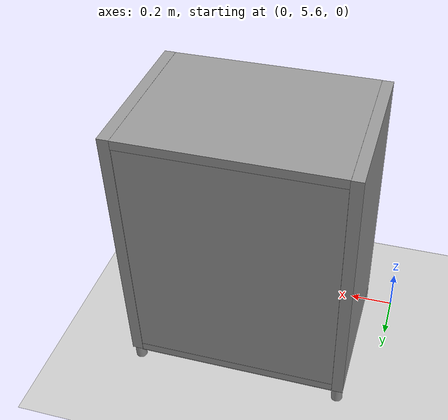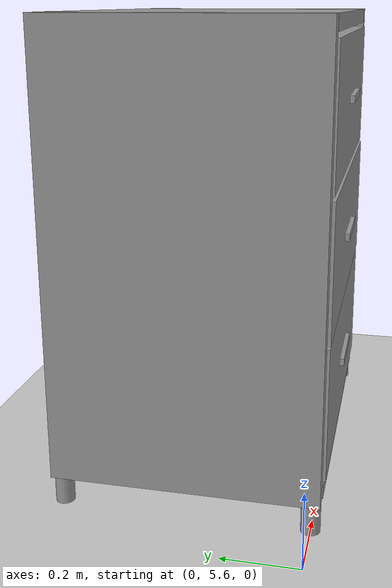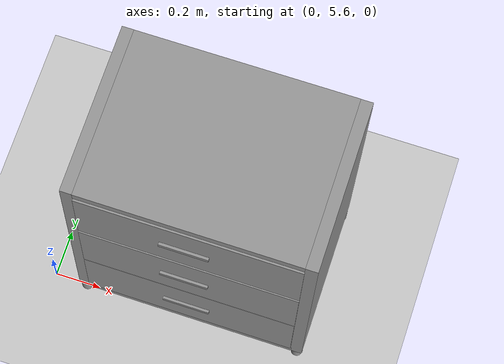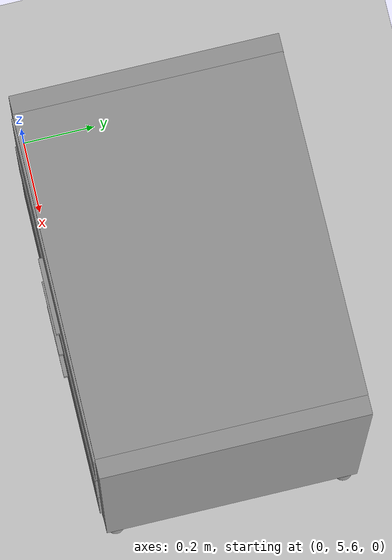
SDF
<sdf version="1.7">
 <world name="default">
  <model name="ground_plane">
   <static>1</static>
   <link name="link">
    <collision name="collision">
     <geometry><plane><normal>0 0 1</normal><size>100 100</size></plane></geometry>
     <surface>
      <contact><collide_bitmask>65535</collide_bitmask></contact>
      <friction><ode><mu>100</mu><mu2>50</mu2></ode></friction>
     </surface>
    </collision>
    <visual name="visual">
     <cast_shadows>0</cast_shadows>
     <geometry><plane><normal>0 0 1</normal><size>100 100</size></plane></geometry>
     <material>
      <script><uri>file://media/materials/scripts/gazebo.material</uri><name>Gazebo/Grey</name></script>
     </material>
    </visual>
   </link>
  </model>
  <model name="my_tall_drawer_0">
   <link name="link">
    <inertial>
     <mass>1</mass>
     <inertia>
      <ixx>0.166667</ixx>
      <ixy>0</ixy>
      <ixz>0</ixz>
      <iyy>0.166667</iyy>
      <iyz>0</iyz>
      <izz>0.166667</izz>
     </inertia>
    </inertial>
    <pose>-0.03613 -0.018536 -0.061909 0 -0 0</pose>
    <visual name="visual">
     <geometry><box><size>0.05 0.9 1.17</size></box></geometry>
     <material>
      <script><name>Gazebo/Grey</name><uri>file://media/materials/scripts/gazebo.material</uri></script>
      <shader type="pixel"><normal_map>__default__</normal_map></shader>
      <ambient>0.9 0.9 0.9 1</ambient>
      <diffuse>0.9 0.9 0.9 1</diffuse>
      <specular>0.01 0.01 0.01 1</specular>
      <emissive>0 0 0 1</emissive>
     </material>
     <pose>0 0 0.725 0 -0 0</pose>
    </visual>
    <collision name="collision">
     <pose>0 0 0.725 0 -0 0</pose>
     <geometry><box><size>0.05 0.9 1.17</size></box></geometry>
     <surface>
      <friction>
       <ode><mu>1</mu><mu2>1</mu2><fdir1>0 0 0</fdir1><slip1>0</slip1><slip2>0</slip2></ode>
       <torsional>
        <coefficient>1</coefficient>
        <patch_radius>0</patch_radius>
        <surface_radius>0</surface_radius>
        <use_patch_radius>1</use_patch_radius>
        <ode><slip>0</slip></ode>
       </torsional>
      </friction>
      <bounce><restitution_coefficient>0</restitution_coefficient><threshold>1e+06</threshold></bounce>
      <contact>
       <collide_without_contact>0</collide_without_contact>
       <collide_without_contact_bitmask>1</collide_without_contact_bitmask>
       <collide_bitmask>1</collide_bitmask>
       <ode>
        <soft_cfm>0</soft_cfm>
        <soft_erp>0.2</soft_erp>
        <kp>1e+13</kp>
        <kd>1</kd>
        <max_vel>0.01</max_vel>
        <min_depth>0</min_depth>
       </ode>
       <bullet>
        <split_impulse>1</split_impulse>
        <split_impulse_penetration_threshold>-0.01</split_impulse_penetration_threshold>
        <soft_cfm>0</soft_cfm>
        <soft_erp>0.2</soft_erp>
        <kp>1e+13</kp>
        <kd>1</kd>
       </bullet>
      </contact>
     </surface>
    </collision>
   </link>
   <link name="link_0">
    <inertial>
     <mass>1</mass>
     <inertia><ixx>0.145833</ixx><ixy>0</ixy><ixz>0</ixz><iyy>0.145833</iyy><iyz>0</iyz><izz>0.125</izz></inertia>
    </inertial>
    <pose>-0.037041 -0.491807 0.517038 0 -0 0</pose>
    <visual name="visual">
     <pose>0 0 -0.47 0 -0 0</pose>
     <geometry><cylinder><radius>0.025</radius><length>0.075</length></cylinder></geometry>
     <material>
      <lighting>1</lighting>
      <script><uri>file://media/materials/scripts/gazebo.material</uri><name>Gazebo/Grey</name></script>
      <shader type="pixel"><normal_map>__default__</normal_map></shader>
      <ambient>0.9 0.9 0.9 0</ambient>
      <diffuse>0.9 0.9 0.9 1</diffuse>
      <specular>0.01 0.01 0.01 1</specular>
      <emissive>0 0 0 1</emissive>
     </material>
    </visual>
    <collision name="collision">
     <pose>0 0 -0.47 0 -0 0</pose>
     <geometry><cylinder><radius>0.025</radius><length>0.075</length></cylinder></geometry>
     <surface>
      <friction>
       <ode><mu>1</mu><mu2>1</mu2><fdir1>0 0 0</fdir1><slip1>0</slip1><slip2>0</slip2></ode>
       <torsional>
        <coefficient>1</coefficient>
        <patch_radius>0</patch_radius>
        <surface_radius>0</surface_radius>
        <use_patch_radius>1</use_patch_radius>
        <ode><slip>0</slip></ode>
       </torsional>
      </friction>
      <bounce><restitution_coefficient>0</restitution_coefficient><threshold>1e+06</threshold></bounce>
      <contact>
       <collide_without_contact>0</collide_without_contact>
       <collide_without_contact_bitmask>1</collide_without_contact_bitmask>
       <collide_bitmask>1</collide_bitmask>
       <ode>
        <soft_cfm>0</soft_cfm>
        <soft_erp>0.2</soft_erp>
        <kp>1e+13</kp>
        <kd>1</kd>
        <max_vel>0.01</max_vel>
        <min_depth>0</min_depth>
       </ode>
       <bullet>
        <split_impulse>1</split_impulse>
        <split_impulse_penetration_threshold>-0.01</split_impulse_penetration_threshold>
        <soft_cfm>0</soft_cfm>
        <soft_erp>0.2</soft_erp>
        <kp>1e+13</kp>
        <kd>1</kd>
       </bullet>
      </contact>
     </surface>
    </collision>
   </link>
   <link name="link_0_clone">
    <inertial>
     <mass>1</mass>
     <inertia>
      <ixx>0.166667</ixx>
      <ixy>0</ixy>
      <ixz>0</ixz>
      <iyy>0.166667</iyy>
      <iyz>0</iyz>
      <izz>0.166667</izz>
     </inertia>
    </inertial>
    <pose>0.649567 -0.03449 1.03588 0 -0 0</pose>
    <gravity>0</gravity>
    <visual name="visual">
     <geometry><box><size>0.012 0.2 0.02</size></box></geometry>
     <material>
      <lighting>1</lighting>
      <script><uri>file://media/materials/scripts/gazebo.material</uri><name>Gazebo/Grey</name></script>
      <shader type="pixel"><normal_map>__default__</normal_map></shader>
      <ambient>0.2 0.2 0.2 0</ambient>
      <diffuse>0.2 0.2 0.2 1</diffuse>
      <specular>0.01 0.01 0.01 1</specular>
      <emissive>0 0 0 1</emissive>
     </material>
    </visual>
    <collision name="collision">
     <geometry><box><size>0.012 0.2 0.02</size></box></geometry>
     <surface>
      <friction>
       <ode><mu>1</mu><mu2>1</mu2><fdir1>0 0 0</fdir1><slip1>0</slip1><slip2>0</slip2></ode>
       <torsional>
        <coefficient>1</coefficient>
        <patch_radius>0</patch_radius>
        <surface_radius>0</surface_radius>
        <use_patch_radius>1</use_patch_radius>
        <ode><slip>0</slip></ode>
       </torsional>
      </friction>
      <bounce><restitution_coefficient>0</restitution_coefficient><threshold>1e+06</threshold></bounce>
      <contact>
       <collide_without_contact>0</collide_without_contact>
       <collide_without_contact_bitmask>1</collide_without_contact_bitmask>
       <collide_bitmask>1</collide_bitmask>
       <ode>
        <soft_cfm>0</soft_cfm>
        <soft_erp>0.2</soft_erp>
        <kp>1e+13</kp>
        <kd>1</kd>
        <max_vel>0.01</max_vel>
        <min_depth>0</min_depth>
       </ode>
       <bullet>
        <split_impulse>1</split_impulse>
        <split_impulse_penetration_threshold>-0.01</split_impulse_penetration_threshold>
        <soft_cfm>0</soft_cfm>
        <soft_erp>0.2</soft_erp>
        <kp>1e+13</kp>
        <kd>1</kd>
       </bullet>
      </contact>
     </surface>
    </collision>
   </link>
   <link name="link_0_clone_0">
    <inertial>
     <mass>1</mass>
     <inertia><ixx>0.145833</ixx><ixy>0</ixy><ixz>0</ixz><iyy>0.145833</iyy><iyz>0</iyz><izz>0.125</izz></inertia>
    </inertial>
    <pose>0.611334 -0.496528 0.517038 0 -0 0</pose>
    <visual name="visual">
     <pose>0 0 -0.47 0 -0 0</pose>
     <geometry><cylinder><radius>0.025</radius><length>0.075</length></cylinder></geometry>
     <material>
      <lighting>1</lighting>
      <script><uri>file://media/materials/scripts/gazebo.material</uri><name>Gazebo/Grey</name></script>
      <shader type="pixel"><normal_map>__default__</normal_map></shader>
      <ambient>0.9 0.9 0.9 0</ambient>
      <diffuse>0.9 0.9 0.9 1</diffuse>
      <specular>0.01 0.01 0.01 1</specular>
      <emissive>0 0 0 1</emissive>
     </material>
    </visual>
    <collision name="collision">
     <pose>0 0 -0.47 0 -0 0</pose>
     <geometry><cylinder><radius>0.025</radius><length>0.075</length></cylinder></geometry>
     <surface>
      <friction>
       <ode><mu>1</mu><mu2>1</mu2><fdir1>0 0 0</fdir1><slip1>0</slip1><slip2>0</slip2></ode>
       <torsional>
        <coefficient>1</coefficient>
        <patch_radius>0</patch_radius>
        <surface_radius>0</surface_radius>
        <use_patch_radius>1</use_patch_radius>
        <ode><slip>0</slip></ode>
       </torsional>
      </friction>
      <bounce><restitution_coefficient>0</restitution_coefficient><threshold>1e+06</threshold></bounce>
      <contact>
       <collide_without_contact>0</collide_without_contact>
       <collide_without_contact_bitmask>1</collide_without_contact_bitmask>
       <collide_bitmask>1</collide_bitmask>
       <ode>
        <soft_cfm>0</soft_cfm>
        <soft_erp>0.2</soft_erp>
        <kp>1e+13</kp>
        <kd>1</kd>
        <max_vel>0.01</max_vel>
        <min_depth>0</min_depth>
       </ode>
       <bullet>
        <split_impulse>1</split_impulse>
        <split_impulse_penetration_threshold>-0.01</split_impulse_penetration_threshold>
        <soft_cfm>0</soft_cfm>
        <soft_erp>0.2</soft_erp>
        <kp>1e+13</kp>
        <kd>1</kd>
       </bullet>
      </contact>
     </surface>
    </collision>
   </link>
   <link name="link_0_clone_1">
    <inertial>
     <mass>1</mass>
     <inertia><ixx>0.145833</ixx><ixy>0</ixy><ixz>0</ixz><iyy>0.145833</iyy><iyz>0</iyz><izz>0.125</izz></inertia>
    </inertial>
    <pose>-0.03182 0.454415 0.517038 0 -0 0</pose>
    <visual name="visual">
     <pose>0 0 -0.47 0 -0 0</pose>
     <geometry><cylinder><radius>0.025</radius><length>0.075</length></cylinder></geometry>
     <material>
      <lighting>1</lighting>
      <script><uri>file://media/materials/scripts/gazebo.material</uri><name>Gazebo/Grey</name></script>
      <shader type="pixel"><normal_map>__default__</normal_map></shader>
      <ambient>0.9 0.9 0.9 0</ambient>
      <diffuse>0.9 0.9 0.9 1</diffuse>
      <specular>0.01 0.01 0.01 1</specular>
      <emissive>0 0 0 1</emissive>
     </material>
    </visual>
    <collision name="collision">
     <pose>0 0 -0.47 0 -0 0</pose>
     <geometry><cylinder><radius>0.025</radius><length>0.075</length></cylinder></geometry>
     <surface>
      <friction>
       <ode><mu>1</mu><mu2>1</mu2><fdir1>0 0 0</fdir1><slip1>0</slip1><slip2>0</slip2></ode>
       <torsional>
        <coefficient>1</coefficient>
        <patch_radius>0</patch_radius>
        <surface_radius>0</surface_radius>
        <use_patch_radius>1</use_patch_radius>
        <ode><slip>0</slip></ode>
       </torsional>
      </friction>
      <bounce><restitution_coefficient>0</restitution_coefficient><threshold>1e+06</threshold></bounce>
      <contact>
       <collide_without_contact>0</collide_without_contact>
       <collide_without_contact_bitmask>1</collide_without_contact_bitmask>
       <collide_bitmask>1</collide_bitmask>
       <ode>
        <soft_cfm>0</soft_cfm>
        <soft_erp>0.2</soft_erp>
        <kp>1e+13</kp>
        <kd>1</kd>
        <max_vel>0.01</max_vel>
        <min_depth>0</min_depth>
       </ode>
       <bullet>
        <split_impulse>1</split_impulse>
        <split_impulse_penetration_threshold>-0.01</split_impulse_penetration_threshold>
        <soft_cfm>0</soft_cfm>
        <soft_erp>0.2</soft_erp>
        <kp>1e+13</kp>
        <kd>1</kd>
       </bullet>
      </contact>
     </surface>
    </collision>
   </link>
   <link name="link_0_clone_2">
    <inertial>
     <mass>1</mass>
     <inertia><ixx>0.145833</ixx><ixy>0</ixy><ixz>0</ixz><iyy>0.145833</iyy><iyz>0</iyz><izz>0.125</izz></inertia>
    </inertial>
    <pose>0.607914 0.452464 0.517038 0 -0 0</pose>
    <visual name="visual">
     <pose>0 0 -0.47 0 -0 0</pose>
     <geometry><cylinder><radius>0.025</radius><length>0.075</length></cylinder></geometry>
     <material>
      <lighting>1</lighting>
      <script><uri>file://media/materials/scripts/gazebo.material</uri><name>Gazebo/Grey</name></script>
      <shader type="pixel"><normal_map>__default__</normal_map></shader>
      <ambient>0.9 0.9 0.9 0</ambient>
      <diffuse>0.9 0.9 0.9 1</diffuse>
      <specular>0.01 0.01 0.01 1</specular>
      <emissive>0 0 0 1</emissive>
     </material>
    </visual>
    <collision name="collision">
     <pose>0 0 -0.47 0 -0 0</pose>
     <geometry><cylinder><radius>0.025</radius><length>0.075</length></cylinder></geometry>
     <surface>
      <friction>
       <ode><mu>1</mu><mu2>1</mu2><fdir1>0 0 0</fdir1><slip1>0</slip1><slip2>0</slip2></ode>
       <torsional>
        <coefficient>1</coefficient>
        <patch_radius>0</patch_radius>
        <surface_radius>0</surface_radius>
        <use_patch_radius>1</use_patch_radius>
        <ode><slip>0</slip></ode>
       </torsional>
      </friction>
      <bounce><restitution_coefficient>0</restitution_coefficient><threshold>1e+06</threshold></bounce>
      <contact>
       <collide_without_contact>0</collide_without_contact>
       <collide_without_contact_bitmask>1</collide_without_contact_bitmask>
       <collide_bitmask>1</collide_bitmask>
       <ode>
        <soft_cfm>0</soft_cfm>
        <soft_erp>0.2</soft_erp>
        <kp>1e+13</kp>
        <kd>1</kd>
        <max_vel>0.01</max_vel>
        <min_depth>0</min_depth>
       </ode>
       <bullet>
        <split_impulse>1</split_impulse>
        <split_impulse_penetration_threshold>-0.01</split_impulse_penetration_threshold>
        <soft_cfm>0</soft_cfm>
        <soft_erp>0.2</soft_erp>
        <kp>1e+13</kp>
        <kd>1</kd>
       </bullet>
      </contact>
     </surface>
    </collision>
   </link>
   <link name="link_0_clone_clone">
    <inertial>
     <mass>1</mass>
     <inertia>
      <ixx>0.166667</ixx>
      <ixy>0</ixy>
      <ixz>0</ixz>
      <iyy>0.166667</iyy>
      <iyz>0</iyz>
      <izz>0.166667</izz>
     </inertia>
    </inertial>
    <pose>0.648574 -0.032127 0.308738 0 -0 0</pose>
    <gravity>0</gravity>
    <visual name="visual">
     <geometry><box><size>0.012 0.2 0.02</size></box></geometry>
     <material>
      <lighting>1</lighting>
      <script><uri>file://media/materials/scripts/gazebo.material</uri><name>Gazebo/Grey</name></script>
      <shader type="pixel"><normal_map>__default__</normal_map></shader>
      <ambient>0.2 0.2 0.2 0</ambient>
      <diffuse>0.2 0.2 0.2 1</diffuse>
      <specular>0.01 0.01 0.01 1</specular>
      <emissive>0 0 0 1</emissive>
     </material>
    </visual>
    <collision name="collision">
     <geometry><box><size>0.012 0.2 0.02</size></box></geometry>
     <surface>
      <friction>
       <ode><mu>1</mu><mu2>1</mu2><fdir1>0 0 0</fdir1><slip1>0</slip1><slip2>0</slip2></ode>
       <torsional>
        <coefficient>1</coefficient>
        <patch_radius>0</patch_radius>
        <surface_radius>0</surface_radius>
        <use_patch_radius>1</use_patch_radius>
        <ode><slip>0</slip></ode>
       </torsional>
      </friction>
      <bounce><restitution_coefficient>0</restitution_coefficient><threshold>1e+06</threshold></bounce>
      <contact>
       <collide_without_contact>0</collide_without_contact>
       <collide_without_contact_bitmask>1</collide_without_contact_bitmask>
       <collide_bitmask>1</collide_bitmask>
       <ode>
        <soft_cfm>0</soft_cfm>
        <soft_erp>0.2</soft_erp>
        <kp>1e+13</kp>
        <kd>1</kd>
        <max_vel>0.01</max_vel>
        <min_depth>0</min_depth>
       </ode>
       <bullet>
        <split_impulse>1</split_impulse>
        <split_impulse_penetration_threshold>-0.01</split_impulse_penetration_threshold>
        <soft_cfm>0</soft_cfm>
        <soft_erp>0.2</soft_erp>
        <kp>1e+13</kp>
        <kd>1</kd>
       </bullet>
      </contact>
     </surface>
    </collision>
   </link>
   <link name="link_0_clone_clone_0">
    <inertial>
     <mass>1</mass>
     <inertia>
      <ixx>0.166667</ixx>
      <ixy>0</ixy>
      <ixz>0</ixz>
      <iyy>0.166667</iyy>
      <iyz>0</iyz>
      <izz>0.166667</izz>
     </inertia>
    </inertial>
    <pose>0.650881 -0.037424 0.670231 0 -0 0</pose>
    <gravity>0</gravity>
    <visual name="visual">
     <geometry><box><size>0.012 0.2 0.02</size></box></geometry>
     <material>
      <lighting>1</lighting>
      <script><uri>file://media/materials/scripts/gazebo.material</uri><name>Gazebo/Grey</name></script>
      <shader type="pixel"><normal_map>__default__</normal_map></shader>
      <ambient>0.2 0.2 0.2 0</ambient>
      <diffuse>0.2 0.2 0.2 1</diffuse>
      <specular>0.01 0.01 0.01 1</specular>
      <emissive>0 0 0 1</emissive>
     </material>
    </visual>
    <collision name="collision">
     <geometry><box><size>0.012 0.2 0.02</size></box></geometry>
     <surface>
      <friction>
       <ode><mu>1</mu><mu2>1</mu2><fdir1>0 0 0</fdir1><slip1>0</slip1><slip2>0</slip2></ode>
       <torsional>
        <coefficient>1</coefficient>
        <patch_radius>0</patch_radius>
        <surface_radius>0</surface_radius>
        <use_patch_radius>1</use_patch_radius>
        <ode><slip>0</slip></ode>
       </torsional>
      </friction>
      <bounce><restitution_coefficient>0</restitution_coefficient><threshold>1e+06</threshold></bounce>
      <contact>
       <collide_without_contact>0</collide_without_contact>
       <collide_without_contact_bitmask>1</collide_without_contact_bitmask>
       <collide_bitmask>1</collide_bitmask>
       <ode>
        <soft_cfm>0</soft_cfm>
        <soft_erp>0.2</soft_erp>
        <kp>1e+13</kp>
        <kd>1</kd>
        <max_vel>0.01</max_vel>
        <min_depth>0</min_depth>
       </ode>
       <bullet>
        <split_impulse>1</split_impulse>
        <split_impulse_penetration_threshold>-0.01</split_impulse_penetration_threshold>
        <soft_cfm>0</soft_cfm>
        <soft_erp>0.2</soft_erp>
        <kp>1e+13</kp>
        <kd>1</kd>
       </bullet>
      </contact>
     </surface>
    </collision>
   </link>
   <link name="link_clone">
    <inertial>
     <mass>1</mass>
     <inertia>
      <ixx>0.166667</ixx>
      <ixy>0</ixy>
      <ixz>0</ixz>
      <iyy>0.166667</iyy>
      <iyz>0</iyz>
      <izz>0.166667</izz>
     </inertia>
    </inertial>
    <pose>0.28891 -0.018651 -1.19613 1.1e-05 -0.001065 2e-06</pose>
    <visual name="visual">
     <geometry><box><size>0.7 0.9 0.04</size></box></geometry>
     <material>
      <script><name>Gazebo/Grey</name><uri>file://media/materials/scripts/gazebo.material</uri></script>
      <shader type="pixel"><normal_map>__default__</normal_map></shader>
      <ambient>0.9 0.9 0.9 1</ambient>
      <diffuse>0.9 0.9 0.9 1</diffuse>
      <specular>0.01 0.01 0.01 1</specular>
      <emissive>0 0 0 1</emissive>
     </material>
     <pose>0 0 1.3 0 -0 0</pose>
    </visual>
    <collision name="collision">
     <pose>0 0 1.3 0 -0 0</pose>
     <geometry><box><size>0.7 0.9 0.04</size></box></geometry>
     <surface>
      <friction>
       <ode><mu>1</mu><mu2>1</mu2><fdir1>0 0 0</fdir1><slip1>0</slip1><slip2>0</slip2></ode>
       <torsional>
        <coefficient>1</coefficient>
        <patch_radius>0</patch_radius>
        <surface_radius>0</surface_radius>
        <use_patch_radius>1</use_patch_radius>
        <ode><slip>0</slip></ode>
       </torsional>
      </friction>
      <bounce><restitution_coefficient>0</restitution_coefficient><threshold>1e+06</threshold></bounce>
      <contact>
       <collide_without_contact>0</collide_without_contact>
       <collide_without_contact_bitmask>1</collide_without_contact_bitmask>
       <collide_bitmask>1</collide_bitmask>
       <ode>
        <soft_cfm>0</soft_cfm>
        <soft_erp>0.2</soft_erp>
        <kp>1e+13</kp>
        <kd>1</kd>
        <max_vel>0.01</max_vel>
        <min_depth>0</min_depth>
       </ode>
       <bullet>
        <split_impulse>1</split_impulse>
        <split_impulse_penetration_threshold>-0.01</split_impulse_penetration_threshold>
        <soft_cfm>0</soft_cfm>
        <soft_erp>0.2</soft_erp>
        <kp>1e+13</kp>
        <kd>1</kd>
       </bullet>
      </contact>
     </surface>
    </collision>
   </link>
   <link name="link_clone_0">
    <inertial>
     <mass>1</mass>
     <inertia>
      <ixx>0.166667</ixx>
      <ixy>0</ixy>
      <ixz>0</ixz>
      <iyy>0.166667</iyy>
      <iyz>0</iyz>
      <izz>0.166667</izz>
     </inertia>
    </inertial>
    <pose>0.285628 -0.49449 -0.040786 0 -0 0</pose>
    <visual name="visual">
     <geometry><box><size>0.05 0.7 1.17</size></box></geometry>
     <material>
      <script><name>Gazebo/Grey</name><uri>file://media/materials/scripts/gazebo.material</uri></script>
      <shader type="pixel"><normal_map>__default__</normal_map></shader>
      <ambient>0.9 0.9 0.9 1</ambient>
      <diffuse>0.9 0.9 0.9 1</diffuse>
      <specular>0.01 0.01 0.01 1</specular>
      <emissive>0 0 0 1</emissive>
     </material>
     <pose>0 0 0.71 0 -0 1.5707</pose>
    </visual>
    <collision name="collision">
     <pose>0 0 0.71 0 -0 1.5707</pose>
     <geometry><box><size>0.05 0.7 1.17</size></box></geometry>
     <surface>
      <friction>
       <ode><mu>1</mu><mu2>1</mu2><fdir1>0 0 0</fdir1><slip1>0</slip1><slip2>0</slip2></ode>
       <torsional>
        <coefficient>1</coefficient>
        <patch_radius>0</patch_radius>
        <surface_radius>0</surface_radius>
        <use_patch_radius>1</use_patch_radius>
        <ode><slip>0</slip></ode>
       </torsional>
      </friction>
      <bounce><restitution_coefficient>0</restitution_coefficient><threshold>1e+06</threshold></bounce>
      <contact>
       <collide_without_contact>0</collide_without_contact>
       <collide_without_contact_bitmask>1</collide_without_contact_bitmask>
       <collide_bitmask>1</collide_bitmask>
       <ode>
        <soft_cfm>0</soft_cfm>
        <soft_erp>0.2</soft_erp>
        <kp>1e+13</kp>
        <kd>1</kd>
        <max_vel>0.01</max_vel>
        <min_depth>0</min_depth>
       </ode>
       <bullet>
        <split_impulse>1</split_impulse>
        <split_impulse_penetration_threshold>-0.01</split_impulse_penetration_threshold>
        <soft_cfm>0</soft_cfm>
        <soft_erp>0.2</soft_erp>
        <kp>1e+13</kp>
        <kd>1</kd>
       </bullet>
      </contact>
     </surface>
    </collision>
   </link>
   <link name="link_clone_0_clone">
    <inertial>
     <mass>1</mass>
     <inertia>
      <ixx>0.166667</ixx>
      <ixy>0</ixy>
      <ixz>0</ixz>
      <iyy>0.166667</iyy>
      <iyz>0</iyz>
      <izz>0.166667</izz>
     </inertia>
    </inertial>
    <pose>0.286617 0.453061 -0.03976 0 -0 0</pose>
    <visual name="visual">
     <geometry><box><size>0.05 0.7 1.17</size></box></geometry>
     <material>
      <script><name>Gazebo/Grey</name><uri>file://media/materials/scripts/gazebo.material</uri></script>
      <shader type="pixel"><normal_map>__default__</normal_map></shader>
      <ambient>0.9 0.9 0.9 1</ambient>
      <diffuse>0.9 0.9 0.9 1</diffuse>
      <specular>0.01 0.01 0.01 1</specular>
      <emissive>0 0 0 1</emissive>
     </material>
     <pose>0 0 0.71 0 -0 1.5707</pose>
    </visual>
    <collision name="collision">
     <pose>0 0 0.71 0 -0 1.5707</pose>
     <geometry><box><size>0.05 0.7 1.17</size></box></geometry>
     <surface>
      <friction>
       <ode><mu>1</mu><mu2>1</mu2><fdir1>0 0 0</fdir1><slip1>0</slip1><slip2>0</slip2></ode>
       <torsional>
        <coefficient>1</coefficient>
        <patch_radius>0</patch_radius>
        <surface_radius>0</surface_radius>
        <use_patch_radius>1</use_patch_radius>
        <ode><slip>0</slip></ode>
       </torsional>
      </friction>
      <bounce><restitution_coefficient>0</restitution_coefficient><threshold>1e+06</threshold></bounce>
      <contact>
       <collide_without_contact>0</collide_without_contact>
       <collide_without_contact_bitmask>1</collide_without_contact_bitmask>
       <collide_bitmask>1</collide_bitmask>
       <ode>
        <soft_cfm>0</soft_cfm>
        <soft_erp>0.2</soft_erp>
        <kp>1e+13</kp>
        <kd>1</kd>
        <max_vel>0.01</max_vel>
        <min_depth>0</min_depth>
       </ode>
       <bullet>
        <split_impulse>1</split_impulse>
        <split_impulse_penetration_threshold>-0.01</split_impulse_penetration_threshold>
        <soft_cfm>0</soft_cfm>
        <soft_erp>0.2</soft_erp>
        <kp>1e+13</kp>
        <kd>1</kd>
       </bullet>
      </contact>
     </surface>
    </collision>
   </link>
   <link name="link_clone_1_clone">
    <inertial>
     <mass>1</mass>
     <inertia>
      <ixx>0.166667</ixx>
      <ixy>0</ixy>
      <ixz>0</ixz>
      <iyy>0.166667</iyy>
      <iyz>0</iyz>
      <izz>0.166667</izz>
     </inertia>
    </inertial>
    <pose>0.617981 -0.022509 -0.070781 0 -0 0</pose>
    <visual name="visual">
     <geometry><box><size>0.05 0.9 0.35</size></box></geometry>
     <material>
      <script><name>Gazebo/Grey</name><uri>file://media/materials/scripts/gazebo.material</uri></script>
      <shader type="pixel"><normal_map>__default__</normal_map></shader>
      <ambient>0.9 0.9 0.9 1</ambient>
      <diffuse>0.9 0.9 0.9 1</diffuse>
      <specular>0.01 0.01 0.01 1</specular>
      <emissive>0 0 0 1</emissive>
     </material>
     <pose>0 0 0.38 0 -0 0</pose>
    </visual>
    <collision name="collision">
     <pose>0 0 0.38 0 -0 0</pose>
     <geometry><box><size>0.05 0.9 0.35</size></box></geometry>
     <surface>
      <friction>
       <ode><mu>1</mu><mu2>1</mu2><fdir1>0 0 0</fdir1><slip1>0</slip1><slip2>0</slip2></ode>
       <torsional>
        <coefficient>1</coefficient>
        <patch_radius>0</patch_radius>
        <surface_radius>0</surface_radius>
        <use_patch_radius>1</use_patch_radius>
        <ode><slip>0</slip></ode>
       </torsional>
      </friction>
      <bounce><restitution_coefficient>0</restitution_coefficient><threshold>1e+06</threshold></bounce>
      <contact>
       <collide_without_contact>0</collide_without_contact>
       <collide_without_contact_bitmask>1</collide_without_contact_bitmask>
       <collide_bitmask>1</collide_bitmask>
       <ode>
        <soft_cfm>0</soft_cfm>
        <soft_erp>0.2</soft_erp>
        <kp>1e+13</kp>
        <kd>1</kd>
        <max_vel>0.01</max_vel>
        <min_depth>0</min_depth>
       </ode>
       <bullet>
        <split_impulse>1</split_impulse>
        <split_impulse_penetration_threshold>-0.01</split_impulse_penetration_threshold>
        <soft_cfm>0</soft_cfm>
        <soft_erp>0.2</soft_erp>
        <kp>1e+13</kp>
        <kd>1</kd>
       </bullet>
      </contact>
     </surface>
    </collision>
   </link>
   <link name="link_clone_1_clone_clone">
    <inertial>
     <mass>1</mass>
     <inertia>
      <ixx>0.166667</ixx>
      <ixy>0</ixy>
      <ixz>0</ixz>
      <iyy>0.166667</iyy>
      <iyz>0</iyz>
      <izz>0.166667</izz>
     </inertia>
    </inertial>
    <pose>0.619149 -0.021678 0.28766 0 -0 0</pose>
    <visual name="visual">
     <geometry><box><size>0.05 0.9 0.35</size></box></geometry>
     <material>
      <script><name>Gazebo/Grey</name><uri>file://media/materials/scripts/gazebo.material</uri></script>
      <shader type="pixel"><normal_map>__default__</normal_map></shader>
      <ambient>0.9 0.9 0.9 1</ambient>
      <diffuse>0.9 0.9 0.9 1</diffuse>
      <specular>0.01 0.01 0.01 1</specular>
      <emissive>0 0 0 1</emissive>
     </material>
     <pose>0 0 0.38 0 -0 0</pose>
    </visual>
    <collision name="collision">
     <pose>0 0 0.38 0 -0 0</pose>
     <geometry><box><size>0.05 0.9 0.35</size></box></geometry>
     <surface>
      <friction>
       <ode><mu>1</mu><mu2>1</mu2><fdir1>0 0 0</fdir1><slip1>0</slip1><slip2>0</slip2></ode>
       <torsional>
        <coefficient>1</coefficient>
        <patch_radius>0</patch_radius>
        <surface_radius>0</surface_radius>
        <use_patch_radius>1</use_patch_radius>
        <ode><slip>0</slip></ode>
       </torsional>
      </friction>
      <bounce><restitution_coefficient>0</restitution_coefficient><threshold>1e+06</threshold></bounce>
      <contact>
       <collide_without_contact>0</collide_without_contact>
       <collide_without_contact_bitmask>1</collide_without_contact_bitmask>
       <collide_bitmask>1</collide_bitmask>
       <ode>
        <soft_cfm>0</soft_cfm>
        <soft_erp>0.2</soft_erp>
        <kp>1e+13</kp>
        <kd>1</kd>
        <max_vel>0.01</max_vel>
        <min_depth>0</min_depth>
       </ode>
       <bullet>
        <split_impulse>1</split_impulse>
        <split_impulse_penetration_threshold>-0.01</split_impulse_penetration_threshold>
        <soft_cfm>0</soft_cfm>
        <soft_erp>0.2</soft_erp>
        <kp>1e+13</kp>
        <kd>1</kd>
       </bullet>
      </contact>
     </surface>
    </collision>
   </link>
   <link name="link_clone_1_clone_clone_clone">
    <inertial>
     <mass>1</mass>
     <inertia>
      <ixx>0.166667</ixx>
      <ixy>0</ixy>
      <ixz>0</ixz>
      <iyy>0.166667</iyy>
      <iyz>0</iyz>
      <izz>0.166667</izz>
     </inertia>
    </inertial>
    <pose>0.616281 -0.021483 0.647925 0 -0 0</pose>
    <visual name="visual">
     <geometry><box><size>0.05 0.9 0.35</size></box></geometry>
     <material>
      <script><name>Gazebo/Grey</name><uri>file://media/materials/scripts/gazebo.material</uri></script>
      <shader type="pixel"><normal_map>__default__</normal_map></shader>
      <ambient>0.9 0.9 0.9 1</ambient>
      <diffuse>0.9 0.9 0.9 1</diffuse>
      <specular>0.01 0.01 0.01 1</specular>
      <emissive>0 0 0 1</emissive>
     </material>
     <pose>0 0 0.38 0 -0 0</pose>
    </visual>
    <collision name="collision">
     <pose>0 0 0.38 0 -0 0</pose>
     <geometry><box><size>0.05 0.9 0.35</size></box></geometry>
     <surface>
      <friction>
       <ode><mu>1</mu><mu2>1</mu2><fdir1>0 0 0</fdir1><slip1>0</slip1><slip2>0</slip2></ode>
       <torsional>
        <coefficient>1</coefficient>
        <patch_radius>0</patch_radius>
        <surface_radius>0</surface_radius>
        <use_patch_radius>1</use_patch_radius>
        <ode><slip>0</slip></ode>
       </torsional>
      </friction>
      <bounce><restitution_coefficient>0</restitution_coefficient><threshold>1e+06</threshold></bounce>
      <contact>
       <collide_without_contact>0</collide_without_contact>
       <collide_without_contact_bitmask>1</collide_without_contact_bitmask>
       <collide_bitmask>1</collide_bitmask>
       <ode>
        <soft_cfm>0</soft_cfm>
        <soft_erp>0.2</soft_erp>
        <kp>1e+13</kp>
        <kd>1</kd>
        <max_vel>0.01</max_vel>
        <min_depth>0</min_depth>
       </ode>
       <bullet>
        <split_impulse>1</split_impulse>
        <split_impulse_penetration_threshold>-0.01</split_impulse_penetration_threshold>
        <soft_cfm>0</soft_cfm>
        <soft_erp>0.2</soft_erp>
        <kp>1e+13</kp>
        <kd>1</kd>
       </bullet>
      </contact>
     </surface>
    </collision>
   </link>
   <link name="link_clone_clone_0">
    <inertial>
     <mass>1</mass>
     <inertia>
      <ixx>0.166667</ixx>
      <ixy>0</ixy>
      <ixz>0</ixz>
      <iyy>0.166667</iyy>
      <iyz>0</iyz>
      <izz>0.166667</izz>
     </inertia>
    </inertial>
    <pose>0.286116 -0.021247 1.16784 2.2e-05 0.000604 0.000114</pose>
    <visual name="visual">
     <geometry><box><size>0.7 0.9 0.04</size></box></geometry>
     <material>
      <script><name>Gazebo/Grey</name><uri>file://media/materials/scripts/gazebo.material</uri></script>
      <shader type="pixel"><normal_map>__default__</normal_map></shader>
      <ambient>0.9 0.9 0.9 1</ambient>
      <diffuse>0.9 0.9 0.9 1</diffuse>
      <specular>0.01 0.01 0.01 1</specular>
      <emissive>0 0 0 1</emissive>
     </material>
     <pose>0 0 0.067 0 -0 0</pose>
    </visual>
    <collision name="collision">
     <pose>0 0 0.067 0 -0 0</pose>
     <geometry><box><size>0.7 0.9 0.04</size></box></geometry>
     <surface>
      <friction>
       <ode><mu>1</mu><mu2>1</mu2><fdir1>0 0 0</fdir1><slip1>0</slip1><slip2>0</slip2></ode>
       <torsional>
        <coefficient>1</coefficient>
        <patch_radius>0</patch_radius>
        <surface_radius>0</surface_radius>
        <use_patch_radius>1</use_patch_radius>
        <ode><slip>0</slip></ode>
       </torsional>
      </friction>
      <bounce><restitution_coefficient>0</restitution_coefficient><threshold>1e+06</threshold></bounce>
      <contact>
       <collide_without_contact>0</collide_without_contact>
       <collide_without_contact_bitmask>1</collide_without_contact_bitmask>
       <collide_bitmask>1</collide_bitmask>
       <ode>
        <soft_cfm>0</soft_cfm>
        <soft_erp>0.2</soft_erp>
        <kp>1e+13</kp>
        <kd>1</kd>
        <max_vel>0.01</max_vel>
        <min_depth>0</min_depth>
       </ode>
       <bullet>
        <split_impulse>1</split_impulse>
        <split_impulse_penetration_threshold>-0.01</split_impulse_penetration_threshold>
        <soft_cfm>0</soft_cfm>
        <soft_erp>0.2</soft_erp>
        <kp>1e+13</kp>
        <kd>1</kd>
       </bullet>
      </contact>
     </surface>
    </collision>
   </link>
   <static>1</static>
   <pose>0.642646 6.21034 0 0 0 -1.5708</pose>
  </model>
 </world>
</sdf>
